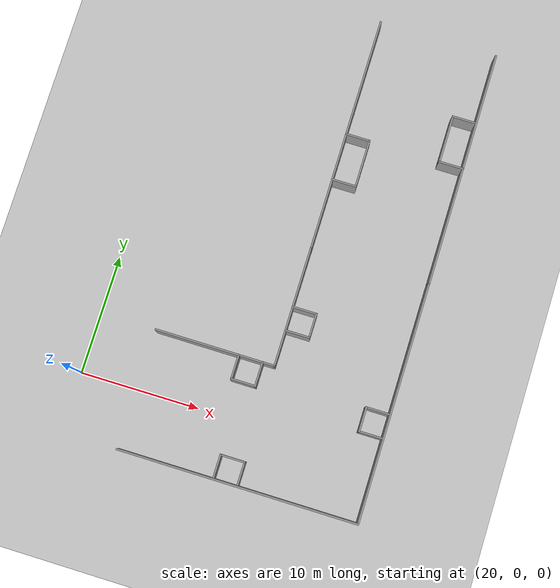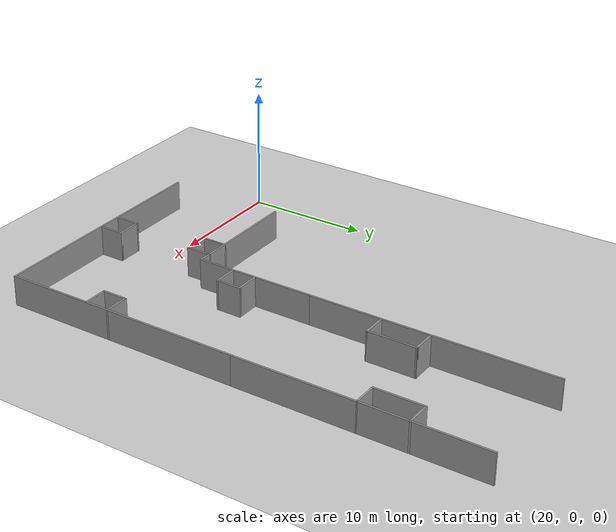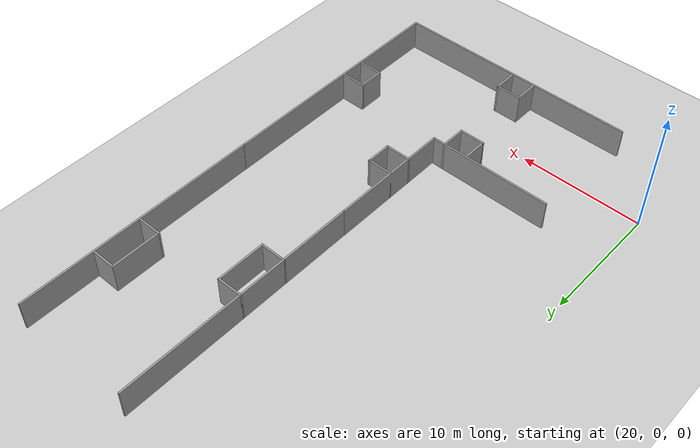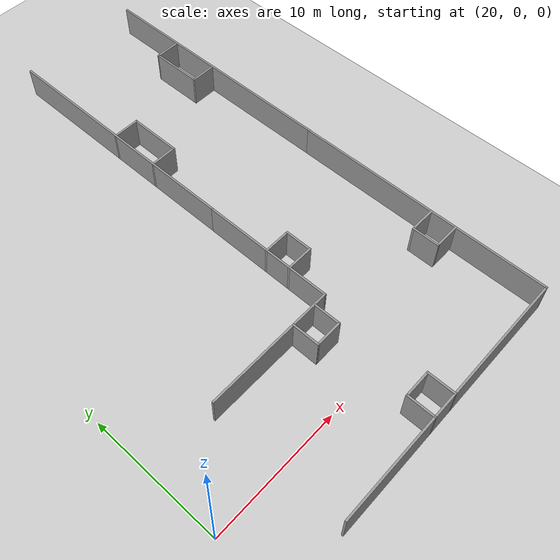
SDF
<sdf version="1.6">
 <world name="default">
  <model name="ground_plane">
   <static>1</static>
   <link name="link">
    <collision name="collision">
     <geometry><plane><normal>0 0 1</normal><size>100 100</size></plane></geometry>
     <surface><friction><ode><mu>100</mu><mu2>50</mu2></ode></friction></surface>
    </collision>
    <visual name="visual">
     <cast_shadows>0</cast_shadows>
     <geometry><plane><normal>0 0 1</normal><size>100 100</size></plane></geometry>
     <material>
      <script><uri>file://media/materials/scripts/gazebo.material</uri><name>Gazebo/Grey</name></script>
     </material>
    </visual>
   </link>
  </model>
  <model name="part_l_1">
   <link name="Wall_27">
    <pose>-0.000179 -10 0 0 -0 0</pose>
    <visual name="Wall_27_Visual">
     <pose>0 0 1.25 0 -0 0</pose>
     <geometry><box><size>20.15 0.15 2.5</size></box></geometry>
     <material>
      <script><uri>file://media/materials/scripts/gazebo.material</uri><name>Gazebo/Grey</name></script>
      <ambient>1 1 1 1</ambient>
      <diffuse>0.7 0.7 0.7 1</diffuse>
      <specular>0.01 0.01 0.01 1</specular>
      <emissive>0 0 0 1</emissive>
     </material>
    </visual>
    <collision name="Wall_27_Collision">
     <pose>0 0 1.25 0 -0 0</pose>
     <geometry><box><size>20.15 0.15 2.5</size></box></geometry>
     <surface>
      <friction>
       <ode><mu>1</mu><mu2>1</mu2><fdir1>0 0 0</fdir1><slip1>0</slip1><slip2>0</slip2></ode>
       <torsional>
        <coefficient>1</coefficient>
        <patch_radius>0</patch_radius>
        <surface_radius>0</surface_radius>
        <use_patch_radius>1</use_patch_radius>
        <ode><slip>0</slip></ode>
       </torsional>
      </friction>
      <bounce><restitution_coefficient>0</restitution_coefficient><threshold>1e+06</threshold></bounce>
      <contact>
       <collide_without_contact>0</collide_without_contact>
       <collide_without_contact_bitmask>1</collide_without_contact_bitmask>
       <collide_bitmask>1</collide_bitmask>
       <ode>
        <soft_cfm>0</soft_cfm>
        <soft_erp>0.2</soft_erp>
        <kp>1e+13</kp>
        <kd>1</kd>
        <max_vel>0.01</max_vel>
        <min_depth>0</min_depth>
       </ode>
       <bullet>
        <split_impulse>1</split_impulse>
        <split_impulse_penetration_threshold>-0.01</split_impulse_penetration_threshold>
        <soft_cfm>0</soft_cfm>
        <soft_erp>0.2</soft_erp>
        <kp>1e+13</kp>
        <kd>1</kd>
       </bullet>
      </contact>
     </surface>
    </collision>
   </link>
   <link name="Wall_28">
    <pose>9.99982 0 0 0 -0 1.5708</pose>
    <visual name="Wall_28_Visual">
     <pose>0 0 1.25 0 -0 0</pose>
     <geometry><box><size>20.15 0.15 2.5</size></box></geometry>
     <material>
      <script><uri>file://media/materials/scripts/gazebo.material</uri><name>Gazebo/Grey</name></script>
      <ambient>1 1 1 1</ambient>
      <diffuse>0.7 0.7 0.7 1</diffuse>
      <specular>0.01 0.01 0.01 1</specular>
      <emissive>0 0 0 1</emissive>
     </material>
    </visual>
    <collision name="Wall_28_Collision">
     <pose>0 0 1.25 0 -0 0</pose>
     <geometry><box><size>20.15 0.15 2.5</size></box></geometry>
     <surface>
      <friction>
       <ode><mu>1</mu><mu2>1</mu2><fdir1>0 0 0</fdir1><slip1>0</slip1><slip2>0</slip2></ode>
       <torsional>
        <coefficient>1</coefficient>
        <patch_radius>0</patch_radius>
        <surface_radius>0</surface_radius>
        <use_patch_radius>1</use_patch_radius>
        <ode><slip>0</slip></ode>
       </torsional>
      </friction>
      <bounce><restitution_coefficient>0</restitution_coefficient><threshold>1e+06</threshold></bounce>
      <contact>
       <collide_without_contact>0</collide_without_contact>
       <collide_without_contact_bitmask>1</collide_without_contact_bitmask>
       <collide_bitmask>1</collide_bitmask>
       <ode>
        <soft_cfm>0</soft_cfm>
        <soft_erp>0.2</soft_erp>
        <kp>1e+13</kp>
        <kd>1</kd>
        <max_vel>0.01</max_vel>
        <min_depth>0</min_depth>
       </ode>
       <bullet>
        <split_impulse>1</split_impulse>
        <split_impulse_penetration_threshold>-0.01</split_impulse_penetration_threshold>
        <soft_cfm>0</soft_cfm>
        <soft_erp>0.2</soft_erp>
        <kp>1e+13</kp>
        <kd>1</kd>
       </bullet>
      </contact>
     </surface>
    </collision>
   </link>
   <link name="Wall_30">
    <pose>-5.00018 0 0 0 -0 0</pose>
    <visual name="Wall_30_Visual">
     <pose>0 0 1.25 0 -0 0</pose>
     <geometry><box><size>10.15 0.15 2.5</size></box></geometry>
     <material>
      <script><uri>file://media/materials/scripts/gazebo.material</uri><name>Gazebo/Grey</name></script>
      <ambient>1 1 1 1</ambient>
      <diffuse>0.7 0.7 0.7 1</diffuse>
      <specular>0.01 0.01 0.01 1</specular>
      <emissive>0 0 0 1</emissive>
     </material>
    </visual>
    <collision name="Wall_30_Collision">
     <pose>0 0 1.25 0 -0 0</pose>
     <geometry><box><size>10.15 0.15 2.5</size></box></geometry>
     <surface>
      <friction>
       <ode><mu>1</mu><mu2>1</mu2><fdir1>0 0 0</fdir1><slip1>0</slip1><slip2>0</slip2></ode>
       <torsional>
        <coefficient>1</coefficient>
        <patch_radius>0</patch_radius>
        <surface_radius>0</surface_radius>
        <use_patch_radius>1</use_patch_radius>
        <ode><slip>0</slip></ode>
       </torsional>
      </friction>
      <bounce><restitution_coefficient>0</restitution_coefficient><threshold>1e+06</threshold></bounce>
      <contact>
       <collide_without_contact>0</collide_without_contact>
       <collide_without_contact_bitmask>1</collide_without_contact_bitmask>
       <collide_bitmask>1</collide_bitmask>
       <ode>
        <soft_cfm>0</soft_cfm>
        <soft_erp>0.2</soft_erp>
        <kp>1e+13</kp>
        <kd>1</kd>
        <max_vel>0.01</max_vel>
        <min_depth>0</min_depth>
       </ode>
       <bullet>
        <split_impulse>1</split_impulse>
        <split_impulse_penetration_threshold>-0.01</split_impulse_penetration_threshold>
        <soft_cfm>0</soft_cfm>
        <soft_erp>0.2</soft_erp>
        <kp>1e+13</kp>
        <kd>1</kd>
       </bullet>
      </contact>
     </surface>
    </collision>
   </link>
   <link name="Wall_31">
    <pose>-0.000179 5 0 0 -0 1.5708</pose>
    <visual name="Wall_31_Visual">
     <pose>0 0 1.25 0 -0 0</pose>
     <geometry><box><size>10.15 0.15 2.5</size></box></geometry>
     <material>
      <script><uri>file://media/materials/scripts/gazebo.material</uri><name>Gazebo/Grey</name></script>
      <ambient>1 1 1 1</ambient>
      <diffuse>0.7 0.7 0.7 1</diffuse>
      <specular>0.01 0.01 0.01 1</specular>
      <emissive>0 0 0 1</emissive>
     </material>
    </visual>
    <collision name="Wall_31_Collision">
     <pose>0 0 1.25 0 -0 0</pose>
     <geometry><box><size>10.15 0.15 2.5</size></box></geometry>
     <surface>
      <friction>
       <ode><mu>1</mu><mu2>1</mu2><fdir1>0 0 0</fdir1><slip1>0</slip1><slip2>0</slip2></ode>
       <torsional>
        <coefficient>1</coefficient>
        <patch_radius>0</patch_radius>
        <surface_radius>0</surface_radius>
        <use_patch_radius>1</use_patch_radius>
        <ode><slip>0</slip></ode>
       </torsional>
      </friction>
      <bounce><restitution_coefficient>0</restitution_coefficient><threshold>1e+06</threshold></bounce>
      <contact>
       <collide_without_contact>0</collide_without_contact>
       <collide_without_contact_bitmask>1</collide_without_contact_bitmask>
       <collide_bitmask>1</collide_bitmask>
       <ode>
        <soft_cfm>0</soft_cfm>
        <soft_erp>0.2</soft_erp>
        <kp>1e+13</kp>
        <kd>1</kd>
        <max_vel>0.01</max_vel>
        <min_depth>0</min_depth>
       </ode>
       <bullet>
        <split_impulse>1</split_impulse>
        <split_impulse_penetration_threshold>-0.01</split_impulse_penetration_threshold>
        <soft_cfm>0</soft_cfm>
        <soft_erp>0.2</soft_erp>
        <kp>1e+13</kp>
        <kd>1</kd>
       </bullet>
      </contact>
     </surface>
    </collision>
   </link>
   <link name="Wall_33">
    <pose>-2.00018 -9 0 0 -0 1.5708</pose>
    <visual name="Wall_33_Visual">
     <pose>0 0 1.25 0 -0 0</pose>
     <geometry><box><size>2.15 0.15 2.5</size></box></geometry>
     <material>
      <script><uri>file://media/materials/scripts/gazebo.material</uri><name>Gazebo/Grey</name></script>
      <ambient>1 1 1 1</ambient>
      <diffuse>0.7 0.7 0.7 1</diffuse>
      <specular>0.01 0.01 0.01 1</specular>
      <emissive>0 0 0 1</emissive>
     </material>
    </visual>
    <collision name="Wall_33_Collision">
     <pose>0 0 1.25 0 -0 0</pose>
     <geometry><box><size>2.15 0.15 2.5</size></box></geometry>
     <surface>
      <friction>
       <ode><mu>1</mu><mu2>1</mu2><fdir1>0 0 0</fdir1><slip1>0</slip1><slip2>0</slip2></ode>
       <torsional>
        <coefficient>1</coefficient>
        <patch_radius>0</patch_radius>
        <surface_radius>0</surface_radius>
        <use_patch_radius>1</use_patch_radius>
        <ode><slip>0</slip></ode>
       </torsional>
      </friction>
      <bounce><restitution_coefficient>0</restitution_coefficient><threshold>1e+06</threshold></bounce>
      <contact>
       <collide_without_contact>0</collide_without_contact>
       <collide_without_contact_bitmask>1</collide_without_contact_bitmask>
       <collide_bitmask>1</collide_bitmask>
       <ode>
        <soft_cfm>0</soft_cfm>
        <soft_erp>0.2</soft_erp>
        <kp>1e+13</kp>
        <kd>1</kd>
        <max_vel>0.01</max_vel>
        <min_depth>0</min_depth>
       </ode>
       <bullet>
        <split_impulse>1</split_impulse>
        <split_impulse_penetration_threshold>-0.01</split_impulse_penetration_threshold>
        <soft_cfm>0</soft_cfm>
        <soft_erp>0.2</soft_erp>
        <kp>1e+13</kp>
        <kd>1</kd>
       </bullet>
      </contact>
     </surface>
    </collision>
   </link>
   <link name="Wall_34">
    <pose>-1.00018 -8 0 0 -0 0</pose>
    <visual name="Wall_34_Visual">
     <pose>0 0 1.25 0 -0 0</pose>
     <geometry><box><size>2.15 0.15 2.5</size></box></geometry>
     <material>
      <script><uri>file://media/materials/scripts/gazebo.material</uri><name>Gazebo/Grey</name></script>
      <ambient>1 1 1 1</ambient>
      <diffuse>0.7 0.7 0.7 1</diffuse>
      <specular>0.01 0.01 0.01 1</specular>
      <emissive>0 0 0 1</emissive>
     </material>
    </visual>
    <collision name="Wall_34_Collision">
     <pose>0 0 1.25 0 -0 0</pose>
     <geometry><box><size>2.15 0.15 2.5</size></box></geometry>
     <surface>
      <friction>
       <ode><mu>1</mu><mu2>1</mu2><fdir1>0 0 0</fdir1><slip1>0</slip1><slip2>0</slip2></ode>
       <torsional>
        <coefficient>1</coefficient>
        <patch_radius>0</patch_radius>
        <surface_radius>0</surface_radius>
        <use_patch_radius>1</use_patch_radius>
        <ode><slip>0</slip></ode>
       </torsional>
      </friction>
      <bounce><restitution_coefficient>0</restitution_coefficient><threshold>1e+06</threshold></bounce>
      <contact>
       <collide_without_contact>0</collide_without_contact>
       <collide_without_contact_bitmask>1</collide_without_contact_bitmask>
       <collide_bitmask>1</collide_bitmask>
       <ode>
        <soft_cfm>0</soft_cfm>
        <soft_erp>0.2</soft_erp>
        <kp>1e+13</kp>
        <kd>1</kd>
        <max_vel>0.01</max_vel>
        <min_depth>0</min_depth>
       </ode>
       <bullet>
        <split_impulse>1</split_impulse>
        <split_impulse_penetration_threshold>-0.01</split_impulse_penetration_threshold>
        <soft_cfm>0</soft_cfm>
        <soft_erp>0.2</soft_erp>
        <kp>1e+13</kp>
        <kd>1</kd>
       </bullet>
      </contact>
     </surface>
    </collision>
   </link>
   <link name="Wall_35">
    <pose>-0.000179 -9 0 0 0 -1.5708</pose>
    <visual name="Wall_35_Visual">
     <pose>0 0 1.25 0 -0 0</pose>
     <geometry><box><size>2.15 0.15 2.5</size></box></geometry>
     <material>
      <script><uri>file://media/materials/scripts/gazebo.material</uri><name>Gazebo/Grey</name></script>
      <ambient>1 1 1 1</ambient>
      <diffuse>0.7 0.7 0.7 1</diffuse>
      <specular>0.01 0.01 0.01 1</specular>
      <emissive>0 0 0 1</emissive>
     </material>
    </visual>
    <collision name="Wall_35_Collision">
     <pose>0 0 1.25 0 -0 0</pose>
     <geometry><box><size>2.15 0.15 2.5</size></box></geometry>
     <surface>
      <friction>
       <ode><mu>1</mu><mu2>1</mu2><fdir1>0 0 0</fdir1><slip1>0</slip1><slip2>0</slip2></ode>
       <torsional>
        <coefficient>1</coefficient>
        <patch_radius>0</patch_radius>
        <surface_radius>0</surface_radius>
        <use_patch_radius>1</use_patch_radius>
        <ode><slip>0</slip></ode>
       </torsional>
      </friction>
      <bounce><restitution_coefficient>0</restitution_coefficient><threshold>1e+06</threshold></bounce>
      <contact>
       <collide_without_contact>0</collide_without_contact>
       <collide_without_contact_bitmask>1</collide_without_contact_bitmask>
       <collide_bitmask>1</collide_bitmask>
       <ode>
        <soft_cfm>0</soft_cfm>
        <soft_erp>0.2</soft_erp>
        <kp>1e+13</kp>
        <kd>1</kd>
        <max_vel>0.01</max_vel>
        <min_depth>0</min_depth>
       </ode>
       <bullet>
        <split_impulse>1</split_impulse>
        <split_impulse_penetration_threshold>-0.01</split_impulse_penetration_threshold>
        <soft_cfm>0</soft_cfm>
        <soft_erp>0.2</soft_erp>
        <kp>1e+13</kp>
        <kd>1</kd>
       </bullet>
      </contact>
     </surface>
    </collision>
   </link>
   <link name="Wall_37">
    <pose>8.99982 -1 0 0 -0 3.14159</pose>
    <visual name="Wall_37_Visual">
     <pose>0 0 1.25 0 -0 0</pose>
     <geometry><box><size>2.15072 0.15 2.5</size></box></geometry>
     <material>
      <script><uri>file://media/materials/scripts/gazebo.material</uri><name>Gazebo/Grey</name></script>
      <ambient>1 1 1 1</ambient>
      <diffuse>0.7 0.7 0.7 1</diffuse>
      <specular>0.01 0.01 0.01 1</specular>
      <emissive>0 0 0 1</emissive>
     </material>
    </visual>
    <collision name="Wall_37_Collision">
     <pose>0 0 1.25 0 -0 0</pose>
     <geometry><box><size>2.15072 0.15 2.5</size></box></geometry>
     <surface>
      <friction>
       <ode><mu>1</mu><mu2>1</mu2><fdir1>0 0 0</fdir1><slip1>0</slip1><slip2>0</slip2></ode>
       <torsional>
        <coefficient>1</coefficient>
        <patch_radius>0</patch_radius>
        <surface_radius>0</surface_radius>
        <use_patch_radius>1</use_patch_radius>
        <ode><slip>0</slip></ode>
       </torsional>
      </friction>
      <bounce><restitution_coefficient>0</restitution_coefficient><threshold>1e+06</threshold></bounce>
      <contact>
       <collide_without_contact>0</collide_without_contact>
       <collide_without_contact_bitmask>1</collide_without_contact_bitmask>
       <collide_bitmask>1</collide_bitmask>
       <ode>
        <soft_cfm>0</soft_cfm>
        <soft_erp>0.2</soft_erp>
        <kp>1e+13</kp>
        <kd>1</kd>
        <max_vel>0.01</max_vel>
        <min_depth>0</min_depth>
       </ode>
       <bullet>
        <split_impulse>1</split_impulse>
        <split_impulse_penetration_threshold>-0.01</split_impulse_penetration_threshold>
        <soft_cfm>0</soft_cfm>
        <soft_erp>0.2</soft_erp>
        <kp>1e+13</kp>
        <kd>1</kd>
       </bullet>
      </contact>
     </surface>
    </collision>
   </link>
   <link name="Wall_38">
    <pose>7.99982 -2 0 0 0 -1.5708</pose>
    <visual name="Wall_38_Visual">
     <pose>0 0 1.25 0 -0 0</pose>
     <geometry><box><size>2.15 0.15 2.5</size></box></geometry>
     <material>
      <script><uri>file://media/materials/scripts/gazebo.material</uri><name>Gazebo/Grey</name></script>
      <ambient>1 1 1 1</ambient>
      <diffuse>0.7 0.7 0.7 1</diffuse>
      <specular>0.01 0.01 0.01 1</specular>
      <emissive>0 0 0 1</emissive>
     </material>
    </visual>
    <collision name="Wall_38_Collision">
     <pose>0 0 1.25 0 -0 0</pose>
     <geometry><box><size>2.15 0.15 2.5</size></box></geometry>
     <surface>
      <friction>
       <ode><mu>1</mu><mu2>1</mu2><fdir1>0 0 0</fdir1><slip1>0</slip1><slip2>0</slip2></ode>
       <torsional>
        <coefficient>1</coefficient>
        <patch_radius>0</patch_radius>
        <surface_radius>0</surface_radius>
        <use_patch_radius>1</use_patch_radius>
        <ode><slip>0</slip></ode>
       </torsional>
      </friction>
      <bounce><restitution_coefficient>0</restitution_coefficient><threshold>1e+06</threshold></bounce>
      <contact>
       <collide_without_contact>0</collide_without_contact>
       <collide_without_contact_bitmask>1</collide_without_contact_bitmask>
       <collide_bitmask>1</collide_bitmask>
       <ode>
        <soft_cfm>0</soft_cfm>
        <soft_erp>0.2</soft_erp>
        <kp>1e+13</kp>
        <kd>1</kd>
        <max_vel>0.01</max_vel>
        <min_depth>0</min_depth>
       </ode>
       <bullet>
        <split_impulse>1</split_impulse>
        <split_impulse_penetration_threshold>-0.01</split_impulse_penetration_threshold>
        <soft_cfm>0</soft_cfm>
        <soft_erp>0.2</soft_erp>
        <kp>1e+13</kp>
        <kd>1</kd>
       </bullet>
      </contact>
     </surface>
    </collision>
   </link>
   <link name="Wall_39">
    <pose>8.99982 -3 0 0 -0 0</pose>
    <visual name="Wall_39_Visual">
     <pose>0 0 1.25 0 -0 0</pose>
     <geometry><box><size>2.15 0.15 2.5</size></box></geometry>
     <material>
      <script><uri>file://media/materials/scripts/gazebo.material</uri><name>Gazebo/Grey</name></script>
      <ambient>1 1 1 1</ambient>
      <diffuse>0.7 0.7 0.7 1</diffuse>
      <specular>0.01 0.01 0.01 1</specular>
      <emissive>0 0 0 1</emissive>
     </material>
    </visual>
    <collision name="Wall_39_Collision">
     <pose>0 0 1.25 0 -0 0</pose>
     <geometry><box><size>2.15 0.15 2.5</size></box></geometry>
     <surface>
      <friction>
       <ode><mu>1</mu><mu2>1</mu2><fdir1>0 0 0</fdir1><slip1>0</slip1><slip2>0</slip2></ode>
       <torsional>
        <coefficient>1</coefficient>
        <patch_radius>0</patch_radius>
        <surface_radius>0</surface_radius>
        <use_patch_radius>1</use_patch_radius>
        <ode><slip>0</slip></ode>
       </torsional>
      </friction>
      <bounce><restitution_coefficient>0</restitution_coefficient><threshold>1e+06</threshold></bounce>
      <contact>
       <collide_without_contact>0</collide_without_contact>
       <collide_without_contact_bitmask>1</collide_without_contact_bitmask>
       <collide_bitmask>1</collide_bitmask>
       <ode>
        <soft_cfm>0</soft_cfm>
        <soft_erp>0.2</soft_erp>
        <kp>1e+13</kp>
        <kd>1</kd>
        <max_vel>0.01</max_vel>
        <min_depth>0</min_depth>
       </ode>
       <bullet>
        <split_impulse>1</split_impulse>
        <split_impulse_penetration_threshold>-0.01</split_impulse_penetration_threshold>
        <soft_cfm>0</soft_cfm>
        <soft_erp>0.2</soft_erp>
        <kp>1e+13</kp>
        <kd>1</kd>
       </bullet>
      </contact>
     </surface>
    </collision>
   </link>
   <link name="Wall_41">
    <pose>0.999821 5 0 0 -0 0</pose>
    <visual name="Wall_41_Visual">
     <pose>0 0 1.25 0 -0 0</pose>
     <geometry><box><size>2.15 0.15 2.5</size></box></geometry>
     <material>
      <script><uri>file://media/materials/scripts/gazebo.material</uri><name>Gazebo/Grey</name></script>
      <ambient>1 1 1 1</ambient>
      <diffuse>0.7 0.7 0.7 1</diffuse>
      <specular>0.01 0.01 0.01 1</specular>
      <emissive>0 0 0 1</emissive>
     </material>
    </visual>
    <collision name="Wall_41_Collision">
     <pose>0 0 1.25 0 -0 0</pose>
     <geometry><box><size>2.15 0.15 2.5</size></box></geometry>
     <surface>
      <friction>
       <ode><mu>1</mu><mu2>1</mu2><fdir1>0 0 0</fdir1><slip1>0</slip1><slip2>0</slip2></ode>
       <torsional>
        <coefficient>1</coefficient>
        <patch_radius>0</patch_radius>
        <surface_radius>0</surface_radius>
        <use_patch_radius>1</use_patch_radius>
        <ode><slip>0</slip></ode>
       </torsional>
      </friction>
      <bounce><restitution_coefficient>0</restitution_coefficient><threshold>1e+06</threshold></bounce>
      <contact>
       <collide_without_contact>0</collide_without_contact>
       <collide_without_contact_bitmask>1</collide_without_contact_bitmask>
       <collide_bitmask>1</collide_bitmask>
       <ode>
        <soft_cfm>0</soft_cfm>
        <soft_erp>0.2</soft_erp>
        <kp>1e+13</kp>
        <kd>1</kd>
        <max_vel>0.01</max_vel>
        <min_depth>0</min_depth>
       </ode>
       <bullet>
        <split_impulse>1</split_impulse>
        <split_impulse_penetration_threshold>-0.01</split_impulse_penetration_threshold>
        <soft_cfm>0</soft_cfm>
        <soft_erp>0.2</soft_erp>
        <kp>1e+13</kp>
        <kd>1</kd>
       </bullet>
      </contact>
     </surface>
    </collision>
   </link>
   <link name="Wall_42">
    <pose>1.99982 4 0 0 0 -1.5708</pose>
    <visual name="Wall_42_Visual">
     <pose>0 0 1.25 0 -0 0</pose>
     <geometry><box><size>2.15 0.15 2.5</size></box></geometry>
     <material>
      <script><uri>file://media/materials/scripts/gazebo.material</uri><name>Gazebo/Grey</name></script>
      <ambient>1 1 1 1</ambient>
      <diffuse>0.7 0.7 0.7 1</diffuse>
      <specular>0.01 0.01 0.01 1</specular>
      <emissive>0 0 0 1</emissive>
     </material>
    </visual>
    <collision name="Wall_42_Collision">
     <pose>0 0 1.25 0 -0 0</pose>
     <geometry><box><size>2.15 0.15 2.5</size></box></geometry>
     <surface>
      <friction>
       <ode><mu>1</mu><mu2>1</mu2><fdir1>0 0 0</fdir1><slip1>0</slip1><slip2>0</slip2></ode>
       <torsional>
        <coefficient>1</coefficient>
        <patch_radius>0</patch_radius>
        <surface_radius>0</surface_radius>
        <use_patch_radius>1</use_patch_radius>
        <ode><slip>0</slip></ode>
       </torsional>
      </friction>
      <bounce><restitution_coefficient>0</restitution_coefficient><threshold>1e+06</threshold></bounce>
      <contact>
       <collide_without_contact>0</collide_without_contact>
       <collide_without_contact_bitmask>1</collide_without_contact_bitmask>
       <collide_bitmask>1</collide_bitmask>
       <ode>
        <soft_cfm>0</soft_cfm>
        <soft_erp>0.2</soft_erp>
        <kp>1e+13</kp>
        <kd>1</kd>
        <max_vel>0.01</max_vel>
        <min_depth>0</min_depth>
       </ode>
       <bullet>
        <split_impulse>1</split_impulse>
        <split_impulse_penetration_threshold>-0.01</split_impulse_penetration_threshold>
        <soft_cfm>0</soft_cfm>
        <soft_erp>0.2</soft_erp>
        <kp>1e+13</kp>
        <kd>1</kd>
       </bullet>
      </contact>
     </surface>
    </collision>
   </link>
   <link name="Wall_43">
    <pose>0.999821 3 0 0 -0 3.14159</pose>
    <visual name="Wall_43_Visual">
     <pose>0 0 1.25 0 -0 0</pose>
     <geometry><box><size>2.15 0.15 2.5</size></box></geometry>
     <material>
      <script><uri>file://media/materials/scripts/gazebo.material</uri><name>Gazebo/Grey</name></script>
      <ambient>1 1 1 1</ambient>
      <diffuse>0.7 0.7 0.7 1</diffuse>
      <specular>0.01 0.01 0.01 1</specular>
      <emissive>0 0 0 1</emissive>
     </material>
    </visual>
    <collision name="Wall_43_Collision">
     <pose>0 0 1.25 0 -0 0</pose>
     <geometry><box><size>2.15 0.15 2.5</size></box></geometry>
     <surface>
      <friction>
       <ode><mu>1</mu><mu2>1</mu2><fdir1>0 0 0</fdir1><slip1>0</slip1><slip2>0</slip2></ode>
       <torsional>
        <coefficient>1</coefficient>
        <patch_radius>0</patch_radius>
        <surface_radius>0</surface_radius>
        <use_patch_radius>1</use_patch_radius>
        <ode><slip>0</slip></ode>
       </torsional>
      </friction>
      <bounce><restitution_coefficient>0</restitution_coefficient><threshold>1e+06</threshold></bounce>
      <contact>
       <collide_without_contact>0</collide_without_contact>
       <collide_without_contact_bitmask>1</collide_without_contact_bitmask>
       <collide_bitmask>1</collide_bitmask>
       <ode>
        <soft_cfm>0</soft_cfm>
        <soft_erp>0.2</soft_erp>
        <kp>1e+13</kp>
        <kd>1</kd>
        <max_vel>0.01</max_vel>
        <min_depth>0</min_depth>
       </ode>
       <bullet>
        <split_impulse>1</split_impulse>
        <split_impulse_penetration_threshold>-0.01</split_impulse_penetration_threshold>
        <soft_cfm>0</soft_cfm>
        <soft_erp>0.2</soft_erp>
        <kp>1e+13</kp>
        <kd>1</kd>
       </bullet>
      </contact>
     </surface>
    </collision>
   </link>
   <link name="Wall_45">
    <pose>-3.00018 -1 0 0 0 -1.5708</pose>
    <visual name="Wall_45_Visual">
     <pose>0 0 1.25 0 -0 0</pose>
     <geometry><box><size>2.15 0.15 2.5</size></box></geometry>
     <material>
      <script><uri>file://media/materials/scripts/gazebo.material</uri><name>Gazebo/Grey</name></script>
      <ambient>1 1 1 1</ambient>
      <diffuse>0.7 0.7 0.7 1</diffuse>
      <specular>0.01 0.01 0.01 1</specular>
      <emissive>0 0 0 1</emissive>
     </material>
    </visual>
    <collision name="Wall_45_Collision">
     <pose>0 0 1.25 0 -0 0</pose>
     <geometry><box><size>2.15 0.15 2.5</size></box></geometry>
     <surface>
      <friction>
       <ode><mu>1</mu><mu2>1</mu2><fdir1>0 0 0</fdir1><slip1>0</slip1><slip2>0</slip2></ode>
       <torsional>
        <coefficient>1</coefficient>
        <patch_radius>0</patch_radius>
        <surface_radius>0</surface_radius>
        <use_patch_radius>1</use_patch_radius>
        <ode><slip>0</slip></ode>
       </torsional>
      </friction>
      <bounce><restitution_coefficient>0</restitution_coefficient><threshold>1e+06</threshold></bounce>
      <contact>
       <collide_without_contact>0</collide_without_contact>
       <collide_without_contact_bitmask>1</collide_without_contact_bitmask>
       <collide_bitmask>1</collide_bitmask>
       <ode>
        <soft_cfm>0</soft_cfm>
        <soft_erp>0.2</soft_erp>
        <kp>1e+13</kp>
        <kd>1</kd>
        <max_vel>0.01</max_vel>
        <min_depth>0</min_depth>
       </ode>
       <bullet>
        <split_impulse>1</split_impulse>
        <split_impulse_penetration_threshold>-0.01</split_impulse_penetration_threshold>
        <soft_cfm>0</soft_cfm>
        <soft_erp>0.2</soft_erp>
        <kp>1e+13</kp>
        <kd>1</kd>
       </bullet>
      </contact>
     </surface>
    </collision>
   </link>
   <link name="Wall_46">
    <pose>-2.00018 -2 0 0 -0 0</pose>
    <visual name="Wall_46_Visual">
     <pose>0 0 1.25 0 -0 0</pose>
     <geometry><box><size>2.15 0.15 2.5</size></box></geometry>
     <material>
      <script><uri>file://media/materials/scripts/gazebo.material</uri><name>Gazebo/Grey</name></script>
      <ambient>1 1 1 1</ambient>
      <diffuse>0.7 0.7 0.7 1</diffuse>
      <specular>0.01 0.01 0.01 1</specular>
      <emissive>0 0 0 1</emissive>
     </material>
    </visual>
    <collision name="Wall_46_Collision">
     <pose>0 0 1.25 0 -0 0</pose>
     <geometry><box><size>2.15 0.15 2.5</size></box></geometry>
     <surface>
      <friction>
       <ode><mu>1</mu><mu2>1</mu2><fdir1>0 0 0</fdir1><slip1>0</slip1><slip2>0</slip2></ode>
       <torsional>
        <coefficient>1</coefficient>
        <patch_radius>0</patch_radius>
        <surface_radius>0</surface_radius>
        <use_patch_radius>1</use_patch_radius>
        <ode><slip>0</slip></ode>
       </torsional>
      </friction>
      <bounce><restitution_coefficient>0</restitution_coefficient><threshold>1e+06</threshold></bounce>
      <contact>
       <collide_without_contact>0</collide_without_contact>
       <collide_without_contact_bitmask>1</collide_without_contact_bitmask>
       <collide_bitmask>1</collide_bitmask>
       <ode>
        <soft_cfm>0</soft_cfm>
        <soft_erp>0.2</soft_erp>
        <kp>1e+13</kp>
        <kd>1</kd>
        <max_vel>0.01</max_vel>
        <min_depth>0</min_depth>
       </ode>
       <bullet>
        <split_impulse>1</split_impulse>
        <split_impulse_penetration_threshold>-0.01</split_impulse_penetration_threshold>
        <soft_cfm>0</soft_cfm>
        <soft_erp>0.2</soft_erp>
        <kp>1e+13</kp>
        <kd>1</kd>
       </bullet>
      </contact>
     </surface>
    </collision>
   </link>
   <link name="Wall_47">
    <pose>-1.00018 -0.999 0 0 -0 1.5708</pose>
    <visual name="Wall_47_Visual">
     <pose>0 0 1.25 0 -0 0</pose>
     <geometry><box><size>2.152 0.15 2.5</size></box></geometry>
     <material>
      <script><uri>file://media/materials/scripts/gazebo.material</uri><name>Gazebo/Grey</name></script>
      <ambient>1 1 1 1</ambient>
      <diffuse>0.7 0.7 0.7 1</diffuse>
      <specular>0.01 0.01 0.01 1</specular>
      <emissive>0 0 0 1</emissive>
     </material>
    </visual>
    <collision name="Wall_47_Collision">
     <pose>0 0 1.25 0 -0 0</pose>
     <geometry><box><size>2.152 0.15 2.5</size></box></geometry>
     <surface>
      <friction>
       <ode><mu>1</mu><mu2>1</mu2><fdir1>0 0 0</fdir1><slip1>0</slip1><slip2>0</slip2></ode>
       <torsional>
        <coefficient>1</coefficient>
        <patch_radius>0</patch_radius>
        <surface_radius>0</surface_radius>
        <use_patch_radius>1</use_patch_radius>
        <ode><slip>0</slip></ode>
       </torsional>
      </friction>
      <bounce><restitution_coefficient>0</restitution_coefficient><threshold>1e+06</threshold></bounce>
      <contact>
       <collide_without_contact>0</collide_without_contact>
       <collide_without_contact_bitmask>1</collide_without_contact_bitmask>
       <collide_bitmask>1</collide_bitmask>
       <ode>
        <soft_cfm>0</soft_cfm>
        <soft_erp>0.2</soft_erp>
        <kp>1e+13</kp>
        <kd>1</kd>
        <max_vel>0.01</max_vel>
        <min_depth>0</min_depth>
       </ode>
       <bullet>
        <split_impulse>1</split_impulse>
        <split_impulse_penetration_threshold>-0.01</split_impulse_penetration_threshold>
        <soft_cfm>0</soft_cfm>
        <soft_erp>0.2</soft_erp>
        <kp>1e+13</kp>
        <kd>1</kd>
       </bullet>
      </contact>
     </surface>
    </collision>
   </link>
   <static>1</static>
   <pose>35 5 0 0 -0 0</pose>
  </model>
  <model name="part_line_2">
   <link name="Wall_15">
    <pose>0 -5 0 0 -0 0</pose>
    <visual name="Wall_15_Visual">
     <pose>0 0 1.25 0 -0 0</pose>
     <geometry><box><size>20.15 0.15 2.5</size></box></geometry>
     <material>
      <script><uri>file://media/materials/scripts/gazebo.material</uri><name>Gazebo/Grey</name></script>
      <ambient>1 1 1 1</ambient>
      <diffuse>0.7 0.7 0.7 1</diffuse>
      <specular>0.01 0.01 0.01 1</specular>
      <emissive>0 0 0 1</emissive>
     </material>
    </visual>
    <collision name="Wall_15_Collision">
     <pose>0 0 1.25 0 -0 0</pose>
     <geometry><box><size>20.15 0.15 2.5</size></box></geometry>
     <surface>
      <friction>
       <ode><mu>1</mu><mu2>1</mu2><fdir1>0 0 0</fdir1><slip1>0</slip1><slip2>0</slip2></ode>
       <torsional>
        <coefficient>1</coefficient>
        <patch_radius>0</patch_radius>
        <surface_radius>0</surface_radius>
        <use_patch_radius>1</use_patch_radius>
        <ode><slip>0</slip></ode>
       </torsional>
      </friction>
      <bounce><restitution_coefficient>0</restitution_coefficient><threshold>1e+06</threshold></bounce>
      <contact>
       <collide_without_contact>0</collide_without_contact>
       <collide_without_contact_bitmask>1</collide_without_contact_bitmask>
       <collide_bitmask>1</collide_bitmask>
       <ode>
        <soft_cfm>0</soft_cfm>
        <soft_erp>0.2</soft_erp>
        <kp>1e+13</kp>
        <kd>1</kd>
        <max_vel>0.01</max_vel>
        <min_depth>0</min_depth>
       </ode>
       <bullet>
        <split_impulse>1</split_impulse>
        <split_impulse_penetration_threshold>-0.01</split_impulse_penetration_threshold>
        <soft_cfm>0</soft_cfm>
        <soft_erp>0.2</soft_erp>
        <kp>1e+13</kp>
        <kd>1</kd>
       </bullet>
      </contact>
     </surface>
    </collision>
   </link>
   <link name="Wall_17">
    <pose>0 5 0 0 -0 0</pose>
    <visual name="Wall_17_Visual">
     <pose>0 0 1.25 0 -0 0</pose>
     <geometry><box><size>20.15 0.15 2.5</size></box></geometry>
     <material>
      <script><uri>file://media/materials/scripts/gazebo.material</uri><name>Gazebo/Grey</name></script>
      <ambient>1 1 1 1</ambient>
      <diffuse>0.7 0.7 0.7 1</diffuse>
      <specular>0.01 0.01 0.01 1</specular>
      <emissive>0 0 0 1</emissive>
     </material>
    </visual>
    <collision name="Wall_17_Collision">
     <pose>0 0 1.25 0 -0 0</pose>
     <geometry><box><size>20.15 0.15 2.5</size></box></geometry>
     <surface>
      <friction>
       <ode><mu>1</mu><mu2>1</mu2><fdir1>0 0 0</fdir1><slip1>0</slip1><slip2>0</slip2></ode>
       <torsional>
        <coefficient>1</coefficient>
        <patch_radius>0</patch_radius>
        <surface_radius>0</surface_radius>
        <use_patch_radius>1</use_patch_radius>
        <ode><slip>0</slip></ode>
       </torsional>
      </friction>
      <bounce><restitution_coefficient>0</restitution_coefficient><threshold>1e+06</threshold></bounce>
      <contact>
       <collide_without_contact>0</collide_without_contact>
       <collide_without_contact_bitmask>1</collide_without_contact_bitmask>
       <collide_bitmask>1</collide_bitmask>
       <ode>
        <soft_cfm>0</soft_cfm>
        <soft_erp>0.2</soft_erp>
        <kp>1e+13</kp>
        <kd>1</kd>
        <max_vel>0.01</max_vel>
        <min_depth>0</min_depth>
       </ode>
       <bullet>
        <split_impulse>1</split_impulse>
        <split_impulse_penetration_threshold>-0.01</split_impulse_penetration_threshold>
        <soft_cfm>0</soft_cfm>
        <soft_erp>0.2</soft_erp>
        <kp>1e+13</kp>
        <kd>1</kd>
       </bullet>
      </contact>
     </surface>
    </collision>
   </link>
   <link name="Wall_19">
    <pose>-4 4 0 0 0 -1.5708</pose>
    <visual name="Wall_19_Visual">
     <pose>0 0 1.25 0 -0 0</pose>
     <geometry><box><size>2.15 0.15 2.5</size></box></geometry>
     <material>
      <script><uri>file://media/materials/scripts/gazebo.material</uri><name>Gazebo/Grey</name></script>
      <ambient>1 1 1 1</ambient>
      <diffuse>0.7 0.7 0.7 1</diffuse>
      <specular>0.01 0.01 0.01 1</specular>
      <emissive>0 0 0 1</emissive>
     </material>
    </visual>
    <collision name="Wall_19_Collision">
     <pose>0 0 1.25 0 -0 0</pose>
     <geometry><box><size>2.15 0.15 2.5</size></box></geometry>
     <surface>
      <friction>
       <ode><mu>1</mu><mu2>1</mu2><fdir1>0 0 0</fdir1><slip1>0</slip1><slip2>0</slip2></ode>
       <torsional>
        <coefficient>1</coefficient>
        <patch_radius>0</patch_radius>
        <surface_radius>0</surface_radius>
        <use_patch_radius>1</use_patch_radius>
        <ode><slip>0</slip></ode>
       </torsional>
      </friction>
      <bounce><restitution_coefficient>0</restitution_coefficient><threshold>1e+06</threshold></bounce>
      <contact>
       <collide_without_contact>0</collide_without_contact>
       <collide_without_contact_bitmask>1</collide_without_contact_bitmask>
       <collide_bitmask>1</collide_bitmask>
       <ode>
        <soft_cfm>0</soft_cfm>
        <soft_erp>0.2</soft_erp>
        <kp>1e+13</kp>
        <kd>1</kd>
        <max_vel>0.01</max_vel>
        <min_depth>0</min_depth>
       </ode>
       <bullet>
        <split_impulse>1</split_impulse>
        <split_impulse_penetration_threshold>-0.01</split_impulse_penetration_threshold>
        <soft_cfm>0</soft_cfm>
        <soft_erp>0.2</soft_erp>
        <kp>1e+13</kp>
        <kd>1</kd>
       </bullet>
      </contact>
     </surface>
    </collision>
   </link>
   <link name="Wall_20">
    <pose>-2 3 0 0 -0 0</pose>
    <visual name="Wall_20_Visual">
     <pose>0 0 1.25 0 -0 0</pose>
     <geometry><box><size>4.15 0.15 2.5</size></box></geometry>
     <material>
      <script><uri>file://media/materials/scripts/gazebo.material</uri><name>Gazebo/Grey</name></script>
      <ambient>1 1 1 1</ambient>
      <diffuse>0.7 0.7 0.7 1</diffuse>
      <specular>0.01 0.01 0.01 1</specular>
      <emissive>0 0 0 1</emissive>
     </material>
    </visual>
    <collision name="Wall_20_Collision">
     <pose>0 0 1.25 0 -0 0</pose>
     <geometry><box><size>4.15 0.15 2.5</size></box></geometry>
     <surface>
      <friction>
       <ode><mu>1</mu><mu2>1</mu2><fdir1>0 0 0</fdir1><slip1>0</slip1><slip2>0</slip2></ode>
       <torsional>
        <coefficient>1</coefficient>
        <patch_radius>0</patch_radius>
        <surface_radius>0</surface_radius>
        <use_patch_radius>1</use_patch_radius>
        <ode><slip>0</slip></ode>
       </torsional>
      </friction>
      <bounce><restitution_coefficient>0</restitution_coefficient><threshold>1e+06</threshold></bounce>
      <contact>
       <collide_without_contact>0</collide_without_contact>
       <collide_without_contact_bitmask>1</collide_without_contact_bitmask>
       <collide_bitmask>1</collide_bitmask>
       <ode>
        <soft_cfm>0</soft_cfm>
        <soft_erp>0.2</soft_erp>
        <kp>1e+13</kp>
        <kd>1</kd>
        <max_vel>0.01</max_vel>
        <min_depth>0</min_depth>
       </ode>
       <bullet>
        <split_impulse>1</split_impulse>
        <split_impulse_penetration_threshold>-0.01</split_impulse_penetration_threshold>
        <soft_cfm>0</soft_cfm>
        <soft_erp>0.2</soft_erp>
        <kp>1e+13</kp>
        <kd>1</kd>
       </bullet>
      </contact>
     </surface>
    </collision>
   </link>
   <link name="Wall_21">
    <pose>0 4 0 0 -0 1.5708</pose>
    <visual name="Wall_21_Visual">
     <pose>0 0 1.25 0 -0 0</pose>
     <geometry><box><size>2.15 0.15 2.5</size></box></geometry>
     <material>
      <script><uri>file://media/materials/scripts/gazebo.material</uri><name>Gazebo/Grey</name></script>
      <ambient>1 1 1 1</ambient>
      <diffuse>0.7 0.7 0.7 1</diffuse>
      <specular>0.01 0.01 0.01 1</specular>
      <emissive>0 0 0 1</emissive>
     </material>
    </visual>
    <collision name="Wall_21_Collision">
     <pose>0 0 1.25 0 -0 0</pose>
     <geometry><box><size>2.15 0.15 2.5</size></box></geometry>
     <surface>
      <friction>
       <ode><mu>1</mu><mu2>1</mu2><fdir1>0 0 0</fdir1><slip1>0</slip1><slip2>0</slip2></ode>
       <torsional>
        <coefficient>1</coefficient>
        <patch_radius>0</patch_radius>
        <surface_radius>0</surface_radius>
        <use_patch_radius>1</use_patch_radius>
        <ode><slip>0</slip></ode>
       </torsional>
      </friction>
      <bounce><restitution_coefficient>0</restitution_coefficient><threshold>1e+06</threshold></bounce>
      <contact>
       <collide_without_contact>0</collide_without_contact>
       <collide_without_contact_bitmask>1</collide_without_contact_bitmask>
       <collide_bitmask>1</collide_bitmask>
       <ode>
        <soft_cfm>0</soft_cfm>
        <soft_erp>0.2</soft_erp>
        <kp>1e+13</kp>
        <kd>1</kd>
        <max_vel>0.01</max_vel>
        <min_depth>0</min_depth>
       </ode>
       <bullet>
        <split_impulse>1</split_impulse>
        <split_impulse_penetration_threshold>-0.01</split_impulse_penetration_threshold>
        <soft_cfm>0</soft_cfm>
        <soft_erp>0.2</soft_erp>
        <kp>1e+13</kp>
        <kd>1</kd>
       </bullet>
      </contact>
     </surface>
    </collision>
   </link>
   <link name="Wall_23">
    <pose>0 -4 0 0 -0 1.5708</pose>
    <visual name="Wall_23_Visual">
     <pose>0 0 1.25 0 -0 0</pose>
     <geometry><box><size>2.15 0.15 2.5</size></box></geometry>
     <material>
      <script><uri>file://media/materials/scripts/gazebo.material</uri><name>Gazebo/Grey</name></script>
      <ambient>1 1 1 1</ambient>
      <diffuse>0.7 0.7 0.7 1</diffuse>
      <specular>0.01 0.01 0.01 1</specular>
      <emissive>0 0 0 1</emissive>
     </material>
    </visual>
    <collision name="Wall_23_Collision">
     <pose>0 0 1.25 0 -0 0</pose>
     <geometry><box><size>2.15 0.15 2.5</size></box></geometry>
     <surface>
      <friction>
       <ode><mu>1</mu><mu2>1</mu2><fdir1>0 0 0</fdir1><slip1>0</slip1><slip2>0</slip2></ode>
       <torsional>
        <coefficient>1</coefficient>
        <patch_radius>0</patch_radius>
        <surface_radius>0</surface_radius>
        <use_patch_radius>1</use_patch_radius>
        <ode><slip>0</slip></ode>
       </torsional>
      </friction>
      <bounce><restitution_coefficient>0</restitution_coefficient><threshold>1e+06</threshold></bounce>
      <contact>
       <collide_without_contact>0</collide_without_contact>
       <collide_without_contact_bitmask>1</collide_without_contact_bitmask>
       <collide_bitmask>1</collide_bitmask>
       <ode>
        <soft_cfm>0</soft_cfm>
        <soft_erp>0.2</soft_erp>
        <kp>1e+13</kp>
        <kd>1</kd>
        <max_vel>0.01</max_vel>
        <min_depth>0</min_depth>
       </ode>
       <bullet>
        <split_impulse>1</split_impulse>
        <split_impulse_penetration_threshold>-0.01</split_impulse_penetration_threshold>
        <soft_cfm>0</soft_cfm>
        <soft_erp>0.2</soft_erp>
        <kp>1e+13</kp>
        <kd>1</kd>
       </bullet>
      </contact>
     </surface>
    </collision>
   </link>
   <link name="Wall_24">
    <pose>2 -3 0 0 -0 0</pose>
    <visual name="Wall_24_Visual">
     <pose>0 0 1.25 0 -0 0</pose>
     <geometry><box><size>4.15 0.15 2.5</size></box></geometry>
     <material>
      <script><uri>file://media/materials/scripts/gazebo.material</uri><name>Gazebo/Grey</name></script>
      <ambient>1 1 1 1</ambient>
      <diffuse>0.7 0.7 0.7 1</diffuse>
      <specular>0.01 0.01 0.01 1</specular>
      <emissive>0 0 0 1</emissive>
     </material>
    </visual>
    <collision name="Wall_24_Collision">
     <pose>0 0 1.25 0 -0 0</pose>
     <geometry><box><size>4.15 0.15 2.5</size></box></geometry>
     <surface>
      <friction>
       <ode><mu>1</mu><mu2>1</mu2><fdir1>0 0 0</fdir1><slip1>0</slip1><slip2>0</slip2></ode>
       <torsional>
        <coefficient>1</coefficient>
        <patch_radius>0</patch_radius>
        <surface_radius>0</surface_radius>
        <use_patch_radius>1</use_patch_radius>
        <ode><slip>0</slip></ode>
       </torsional>
      </friction>
      <bounce><restitution_coefficient>0</restitution_coefficient><threshold>1e+06</threshold></bounce>
      <contact>
       <collide_without_contact>0</collide_without_contact>
       <collide_without_contact_bitmask>1</collide_without_contact_bitmask>
       <collide_bitmask>1</collide_bitmask>
       <ode>
        <soft_cfm>0</soft_cfm>
        <soft_erp>0.2</soft_erp>
        <kp>1e+13</kp>
        <kd>1</kd>
        <max_vel>0.01</max_vel>
        <min_depth>0</min_depth>
       </ode>
       <bullet>
        <split_impulse>1</split_impulse>
        <split_impulse_penetration_threshold>-0.01</split_impulse_penetration_threshold>
        <soft_cfm>0</soft_cfm>
        <soft_erp>0.2</soft_erp>
        <kp>1e+13</kp>
        <kd>1</kd>
       </bullet>
      </contact>
     </surface>
    </collision>
   </link>
   <link name="Wall_25">
    <pose>4 -4 0 0 0 -1.5708</pose>
    <visual name="Wall_25_Visual">
     <pose>0 0 1.25 0 -0 0</pose>
     <geometry><box><size>2.15 0.15 2.5</size></box></geometry>
     <material>
      <script><uri>file://media/materials/scripts/gazebo.material</uri><name>Gazebo/Grey</name></script>
      <ambient>1 1 1 1</ambient>
      <diffuse>0.7 0.7 0.7 1</diffuse>
      <specular>0.01 0.01 0.01 1</specular>
      <emissive>0 0 0 1</emissive>
     </material>
    </visual>
    <collision name="Wall_25_Collision">
     <pose>0 0 1.25 0 -0 0</pose>
     <geometry><box><size>2.15 0.15 2.5</size></box></geometry>
     <surface>
      <friction>
       <ode><mu>1</mu><mu2>1</mu2><fdir1>0 0 0</fdir1><slip1>0</slip1><slip2>0</slip2></ode>
       <torsional>
        <coefficient>1</coefficient>
        <patch_radius>0</patch_radius>
        <surface_radius>0</surface_radius>
        <use_patch_radius>1</use_patch_radius>
        <ode><slip>0</slip></ode>
       </torsional>
      </friction>
      <bounce><restitution_coefficient>0</restitution_coefficient><threshold>1e+06</threshold></bounce>
      <contact>
       <collide_without_contact>0</collide_without_contact>
       <collide_without_contact_bitmask>1</collide_without_contact_bitmask>
       <collide_bitmask>1</collide_bitmask>
       <ode>
        <soft_cfm>0</soft_cfm>
        <soft_erp>0.2</soft_erp>
        <kp>1e+13</kp>
        <kd>1</kd>
        <max_vel>0.01</max_vel>
        <min_depth>0</min_depth>
       </ode>
       <bullet>
        <split_impulse>1</split_impulse>
        <split_impulse_penetration_threshold>-0.01</split_impulse_penetration_threshold>
        <soft_cfm>0</soft_cfm>
        <soft_erp>0.2</soft_erp>
        <kp>1e+13</kp>
        <kd>1</kd>
       </bullet>
      </contact>
     </surface>
    </collision>
   </link>
   <static>1</static>
   <pose>40 25 0 0 0 -1.57</pose>
  </model>
 </world>
</sdf>
